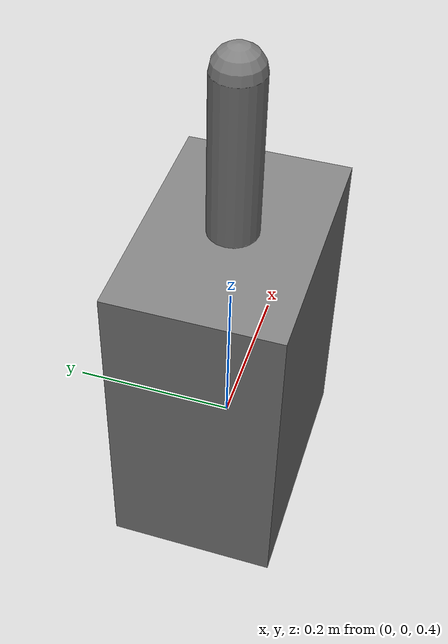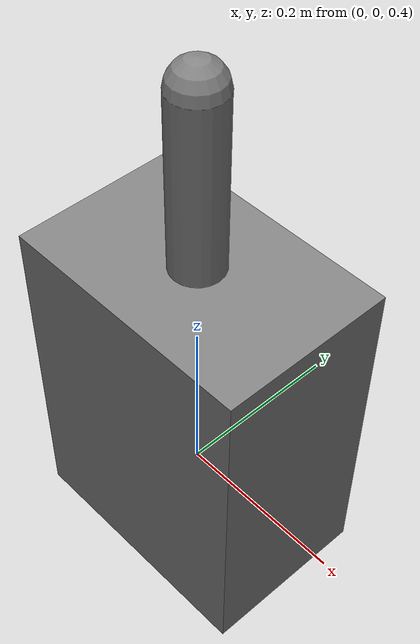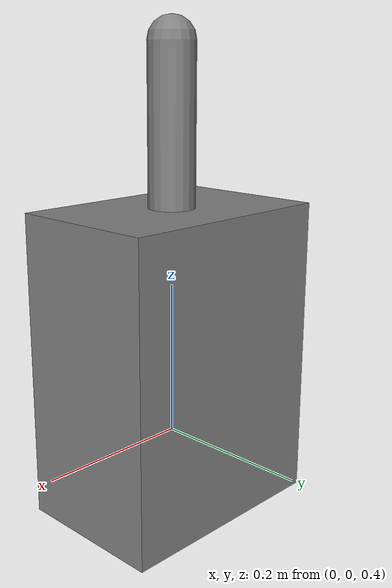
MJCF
<mujoco model="nested_bodies"><compiler angle="radian"/><worldbody><body name="torso" pos="0 0 0.5"><inertial pos="0 0 0" mass="2" diaginertia="0.04 0.05 0.06"/><geom type="box" size="0.15 0.1 0.2"/><body name="upper" pos="0 0 0.2"><joint name="shoulder" type="ball" damping="0.01"/><inertial pos="0 0 0.1" mass="0.5" diaginertia="0.004 0.004 0.001"/><geom type="capsule" fromto="0 0 0 0 0 0.2" size="0.03"/></body></body></worldbody></mujoco>
